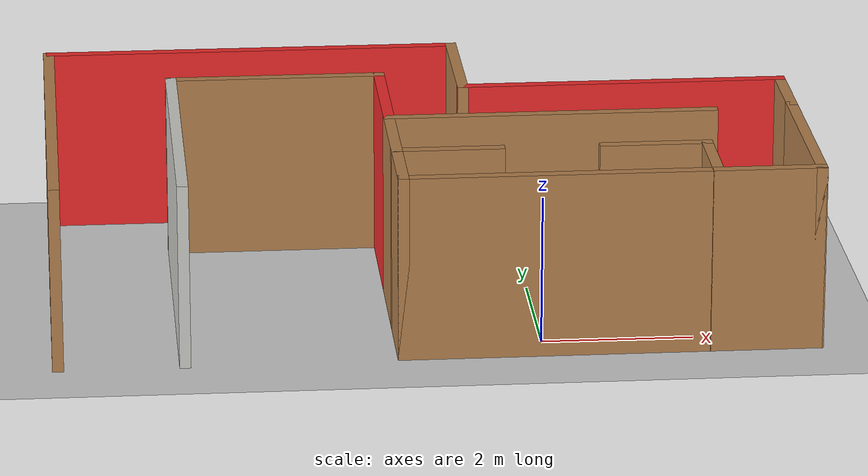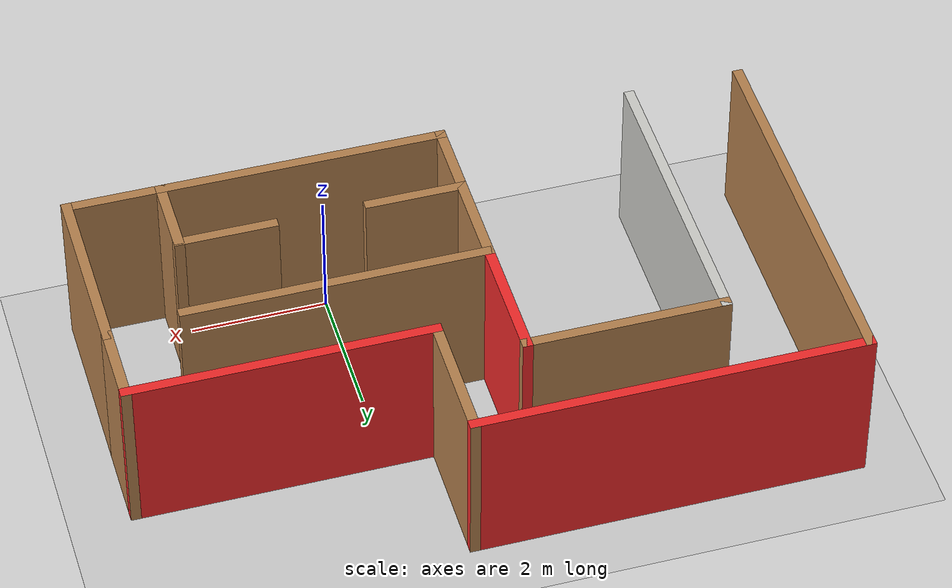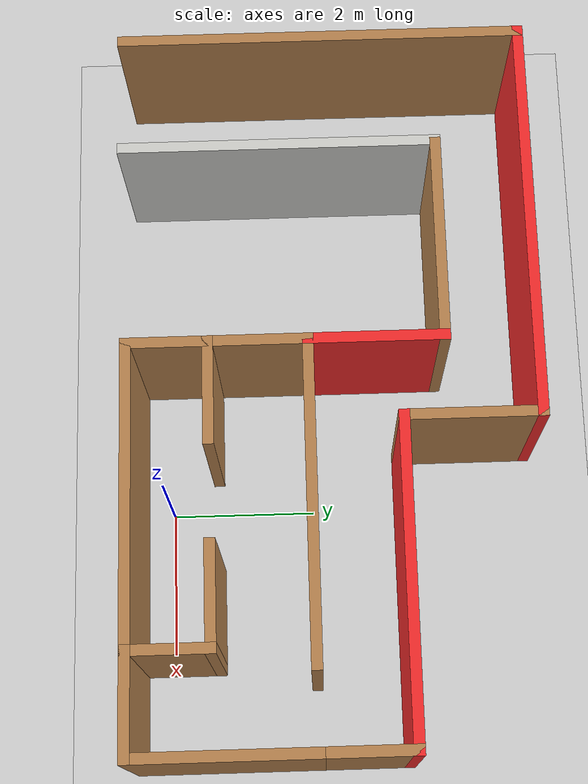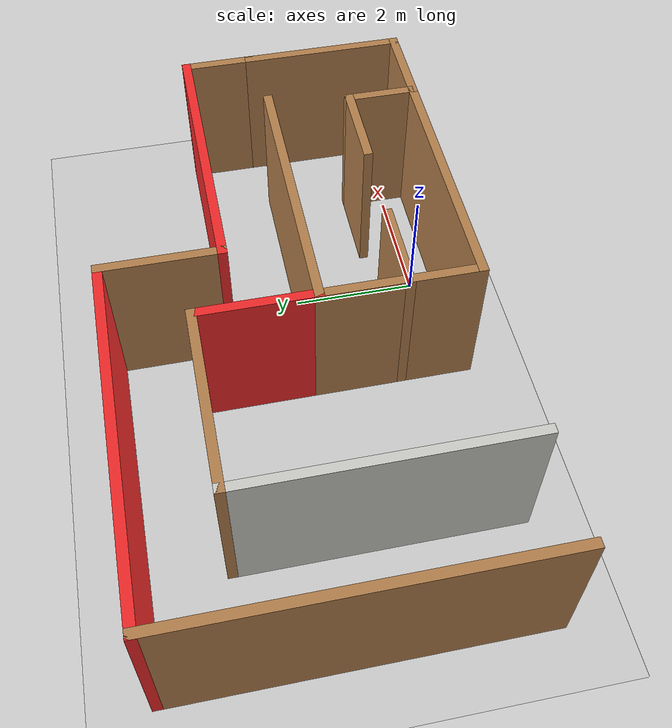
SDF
<sdf version="1.6">
 <world name="default">
  <light name="sun" type="directional">
   <pose>0 0 10 0 -0 0</pose>
   <diffuse>0.8 0.8 0.8 1</diffuse>
   <specular>0.2 0.2 0.2 1</specular>
   <attenuation>
    <range>1000</range>
    <constant>0.9</constant>
    <linear>0.01</linear>
    <quadratic>0.001</quadratic>
   </attenuation>
   <direction>-0.5 0.1 -0.9</direction>
  </light>
  <model name="ground_plane">
   <static>1</static>
   <link name="link">
    <collision name="collision">
     <geometry><plane><normal>0 0 1</normal><size>100 100</size></plane></geometry>
     <surface>
      <contact><collide_bitmask>65535</collide_bitmask></contact>
      <friction><ode><mu>100</mu><mu2>50</mu2></ode></friction>
     </surface>
    </collision>
    <visual name="visual">
     <cast_shadows>0</cast_shadows>
     <geometry><plane><normal>0 0 1</normal><size>100 100</size></plane></geometry>
     <material>
      <script><uri>file://media/materials/scripts/gazebo.material</uri><name>Gazebo/Grey</name></script>
     </material>
    </visual>
   </link>
  </model>
  <gravity>0 0 -9.8</gravity>
  <magnetic_field>6e-06 2.3e-05 -4.2e-05</magnetic_field>
  <atmosphere type="adiabatic"/>
  <physics name="default_physics" default="0" type="ode">
   <max_step_size>0.001</max_step_size>
   <real_time_factor>1</real_time_factor>
   <real_time_update_rate>1000</real_time_update_rate>
  </physics>
  <scene><ambient>0.4 0.4 0.4 1</ambient><background>0.7 0.7 0.7 1</background><shadows>1</shadows></scene>
  <audio><device>default</device></audio>
  <spherical_coordinates>
   <surface_model>EARTH_WGS84</surface_model>
   <latitude_deg>0</latitude_deg>
   <longitude_deg>0</longitude_deg>
   <elevation>0</elevation>
   <heading_deg>0</heading_deg>
  </spherical_coordinates>
  <model name="Untitled">
   <pose>-1.38801 2.29781 0 0 -0 0</pose>
   <link name="Wall_0">
    <collision name="Wall_0_Collision">
     <geometry><box><size>1.5 0.15 2.5</size></box></geometry>
     <pose>0 0 1.25 0 -0 0</pose>
    </collision>
    <visual name="Wall_0_Visual">
     <pose>0 0 1.25 0 -0 0</pose>
     <geometry><box><size>1.5 0.15 2.5</size></box></geometry>
     <material>
      <script><uri>file://media/materials/scripts/gazebo.material</uri><name>Gazebo/Wood</name></script>
      <ambient>1 1 1 1</ambient>
     </material>
     <meta><layer>0</layer></meta>
    </visual>
    <pose>0.2 -1.65 0 0 -0 0</pose>
   </link>
   <link name="Wall_10">
    <collision name="Wall_10_Collision">
     <geometry><box><size>1.5 0.15 2.5</size></box></geometry>
     <pose>0 0 1.25 0 -0 0</pose>
    </collision>
    <visual name="Wall_10_Visual">
     <pose>0 0 1.25 0 -0 0</pose>
     <geometry><box><size>1.5 0.15 2.5</size></box></geometry>
     <material>
      <script><uri>file://media/materials/scripts/gazebo.material</uri><name>Gazebo/Wood</name></script>
      <ambient>1 1 1 1</ambient>
     </material>
     <meta><layer>0</layer></meta>
    </visual>
    <pose>-0.475 -0.975 0 0 -0 1.5708</pose>
   </link>
   <link name="Wall_11">
    <collision name="Wall_11_Collision">
     <geometry><box><size>4.5 0.15 2.5</size></box></geometry>
     <pose>0 0 1.25 0 -0 0</pose>
    </collision>
    <visual name="Wall_11_Visual">
     <pose>0 0 1.25 0 -0 0</pose>
     <geometry><box><size>4.5 0.15 2.5</size></box></geometry>
     <material>
      <script><uri>file://media/materials/scripts/gazebo.material</uri><name>Gazebo/Wood</name></script>
      <ambient>1 1 1 1</ambient>
     </material>
     <meta><layer>0</layer></meta>
    </visual>
    <pose>1.7 -0.3 0 0 -0 0</pose>
   </link>
   <link name="Wall_13">
    <collision name="Wall_13_Collision">
     <geometry><box><size>1.25 0.15 2.5</size></box></geometry>
     <pose>0 0 1.25 0 -0 0</pose>
    </collision>
    <visual name="Wall_13_Visual">
     <pose>0 0 1.25 0 -0 0</pose>
     <geometry><box><size>1.25 0.15 2.5</size></box></geometry>
     <material>
      <script><uri>file://media/materials/scripts/gazebo.material</uri><name>Gazebo/Wood</name></script>
      <ambient>1 1 1 1</ambient>
     </material>
     <meta><layer>0</layer></meta>
    </visual>
    <pose>4.975 0.4 0 0 -0 1.5708</pose>
   </link>
   <link name="Wall_14">
    <collision name="Wall_14_Collision">
     <geometry><box><size>4.5 0.15 2.5</size></box></geometry>
     <pose>0 0 1.25 0 -0 0</pose>
    </collision>
    <visual name="Wall_14_Visual">
     <pose>0 0 1.25 0 -0 0</pose>
     <geometry><box><size>4.5 0.15 2.5</size></box></geometry>
     <material>
      <script><uri>file://media/materials/scripts/gazebo.material</uri><name>Gazebo/Grey</name></script>
      <ambient>0.937255 0.160784 0.160784 1</ambient>
     </material>
     <meta><layer>0</layer></meta>
    </visual>
    <pose>2.8 0.95 0 0 -0 3.14159</pose>
   </link>
   <link name="Wall_16">
    <collision name="Wall_16_Collision">
     <geometry><box><size>2 0.15 2.5</size></box></geometry>
     <pose>0 0 1.25 0 -0 0</pose>
    </collision>
    <visual name="Wall_16_Visual">
     <pose>0 0 1.25 0 -0 0</pose>
     <geometry><box><size>2 0.15 2.5</size></box></geometry>
     <material>
      <script><uri>file://media/materials/scripts/gazebo.material</uri><name>Gazebo/Grey</name></script>
      <ambient>0.937255 0.160784 0.160784 1</ambient>
     </material>
     <meta><layer>0</layer></meta>
    </visual>
    <pose>-0.475 0.625 0 0 -0 1.5708</pose>
   </link>
   <link name="Wall_17">
    <collision name="Wall_17_Collision">
     <geometry><box><size>3 0.15 2.5</size></box></geometry>
     <pose>0 0 1.25 0 -0 0</pose>
    </collision>
    <visual name="Wall_17_Visual">
     <pose>0 0 1.25 0 -0 0</pose>
     <geometry><box><size>3 0.15 2.5</size></box></geometry>
     <material>
      <script><uri>file://media/materials/scripts/gazebo.material</uri><name>Gazebo/Wood</name></script>
      <ambient>1 1 1 1</ambient>
     </material>
     <meta><layer>0</layer></meta>
    </visual>
    <pose>-1.9 1.55 0 0 -0 3.14159</pose>
   </link>
   <link name="Wall_18">
    <collision name="Wall_18_Collision">
     <geometry><box><size>4.5 0.15 2.5</size></box></geometry>
     <pose>0 0 1.25 0 -0 0</pose>
    </collision>
    <visual name="Wall_18_Visual">
     <pose>0 0 1.25 0 -0 0</pose>
     <geometry><box><size>4.5 0.15 2.5</size></box></geometry>
     <material>
      <script><uri>file://media/materials/scripts/gazebo.material</uri><name>Gazebo/CeilingTiled</name></script>
      <ambient>0.937255 0.160784 0.160784 1</ambient>
     </material>
     <meta><layer>0</layer></meta>
    </visual>
    <pose>-3.325 -0.625 0 0 -0 -1.5708</pose>
   </link>
   <link name="Wall_2">
    <collision name="Wall_2_Collision">
     <geometry><box><size>1.25 0.15 2.5</size></box></geometry>
     <pose>0 0 1.25 0 -0 0</pose>
    </collision>
    <visual name="Wall_2_Visual">
     <pose>0 0 1.25 0 -0 0</pose>
     <geometry><box><size>1.25 0.15 2.5</size></box></geometry>
     <material>
      <script><uri>file://media/materials/scripts/gazebo.material</uri><name>Gazebo/Wood</name></script>
      <ambient>1 1 1 1</ambient>
     </material>
     <meta><layer>0</layer></meta>
    </visual>
    <pose>-0.475 -2.2 0 0 -0 -1.5708</pose>
   </link>
   <link name="Wall_20">
    <collision name="Wall_20_Collision">
     <geometry><box><size>2 0.15 2.5</size></box></geometry>
     <pose>0 0 1.25 0 -0 0</pose>
    </collision>
    <visual name="Wall_20_Visual">
     <pose>0 0 1.25 0 -0 0</pose>
     <geometry><box><size>2 0.15 2.5</size></box></geometry>
     <material>
      <script><uri>file://media/materials/scripts/gazebo.material</uri><name>Gazebo/Wood</name></script>
      <ambient>1 1 1 1</ambient>
     </material>
     <meta><layer>0</layer></meta>
    </visual>
    <pose>0.625 1.875 0 0 -0 1.5708</pose>
   </link>
   <link name="Wall_21">
    <collision name="Wall_21_Collision">
     <geometry><box><size>5.75 0.15 2.5</size></box></geometry>
     <pose>0 0 1.25 0 -0 0</pose>
    </collision>
    <visual name="Wall_21_Visual">
     <pose>0 0 1.25 0 -0 0</pose>
     <geometry><box><size>5.75 0.15 2.5</size></box></geometry>
     <material>
      <script><uri>file://media/materials/scripts/gazebo.material</uri><name>Gazebo/Grey</name></script>
      <ambient>0.937255 0.160784 0.160784 1</ambient>
     </material>
     <meta><layer>0</layer></meta>
    </visual>
    <pose>-2.175 2.8 0 0 -0 3.14159</pose>
   </link>
   <link name="Wall_22">
    <collision name="Wall_22_Collision">
     <geometry><box><size>5.75 0.15 2.5</size></box></geometry>
     <pose>0 0 1.25 0 -0 0</pose>
    </collision>
    <visual name="Wall_22_Visual">
     <pose>0 0 1.25 0 -0 0</pose>
     <geometry><box><size>5.75 0.15 2.5</size></box></geometry>
     <material>
      <script><uri>file://media/materials/scripts/gazebo.material</uri><name>Gazebo/Wood</name></script>
      <ambient>1 1 1 1</ambient>
     </material>
     <meta><layer>0</layer></meta>
    </visual>
    <pose>-4.975 0 0 0 -0 -1.5708</pose>
   </link>
   <link name="Wall_3">
    <collision name="Wall_3_Collision">
     <geometry><box><size>4.25 0.15 2.5</size></box></geometry>
     <pose>0 0 1.25 0 -0 0</pose>
    </collision>
    <visual name="Wall_3_Visual">
     <pose>0 0 1.25 0 -0 0</pose>
     <geometry><box><size>4.25 0.15 2.5</size></box></geometry>
     <material>
      <script><uri>file://media/materials/scripts/gazebo.material</uri><name>Gazebo/Wood</name></script>
      <ambient>1 1 1 1</ambient>
     </material>
     <meta><layer>0</layer></meta>
    </visual>
    <pose>1.575 -2.75 0 0 -0 0</pose>
   </link>
   <link name="Wall_4">
    <collision name="Wall_4_Collision">
     <geometry><box><size>1.25 0.15 2.5</size></box></geometry>
     <pose>0 0 1.25 0 -0 0</pose>
    </collision>
    <visual name="Wall_4_Visual">
     <pose>0 0 1.25 0 -0 0</pose>
     <geometry><box><size>1.25 0.15 2.5</size></box></geometry>
     <material>
      <script><uri>file://media/materials/scripts/gazebo.material</uri><name>Gazebo/Wood</name></script>
      <ambient>1 1 1 1</ambient>
     </material>
     <meta><layer>0</layer></meta>
    </visual>
    <pose>3.625 -2.2 0 0 -0 1.5708</pose>
   </link>
   <link name="Wall_5">
    <collision name="Wall_5_Collision">
     <geometry><box><size>1.5 0.15 2.5</size></box></geometry>
     <pose>0 0 1.25 0 -0 0</pose>
    </collision>
    <visual name="Wall_5_Visual">
     <pose>0 0 1.25 0 -0 0</pose>
     <geometry><box><size>1.5 0.15 2.5</size></box></geometry>
     <material>
      <script><uri>file://media/materials/scripts/gazebo.material</uri><name>Gazebo/Wood</name></script>
      <ambient>1 1 1 1</ambient>
     </material>
     <meta><layer>0</layer></meta>
    </visual>
    <pose>2.95 -1.65 0 0 -0 3.14159</pose>
   </link>
   <link name="Wall_7">
    <collision name="Wall_7_Collision">
     <geometry><box><size>1.5 0.15 2.5</size></box></geometry>
     <pose>0 0 1.25 0 -0 0</pose>
    </collision>
    <visual name="Wall_7_Visual">
     <pose>0 0 1.25 0 -0 0</pose>
     <geometry><box><size>1.5 0.15 2.5</size></box></geometry>
     <material>
      <script><uri>file://media/materials/scripts/gazebo.material</uri><name>Gazebo/Wood</name></script>
      <ambient>1 1 1 1</ambient>
     </material>
     <meta><layer>0</layer></meta>
    </visual>
    <pose>4.3 -2.75 0 0 -0 0</pose>
   </link>
   <link name="Wall_8">
    <collision name="Wall_8_Collision">
     <geometry><box><size>2.75 0.15 2.5</size></box></geometry>
     <pose>0 0 1.25 0 -0 0</pose>
    </collision>
    <visual name="Wall_8_Visual">
     <pose>0 0 1.25 0 -0 0</pose>
     <geometry><box><size>2.75 0.15 2.5</size></box></geometry>
     <material>
      <script><uri>file://media/materials/scripts/gazebo.material</uri><name>Gazebo/Wood</name></script>
      <ambient>1 1 1 1</ambient>
     </material>
     <meta><layer>0</layer></meta>
    </visual>
    <pose>4.975 -1.45 0 0 -0 1.5708</pose>
   </link>
   <static>1</static>
  </model>
 </world>
</sdf>
